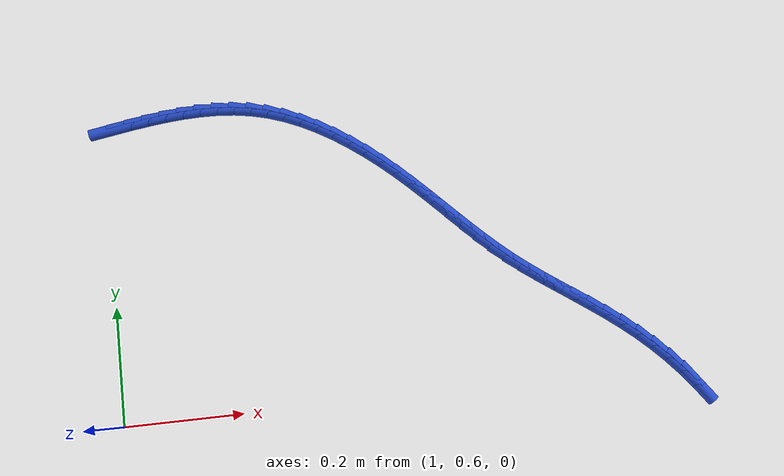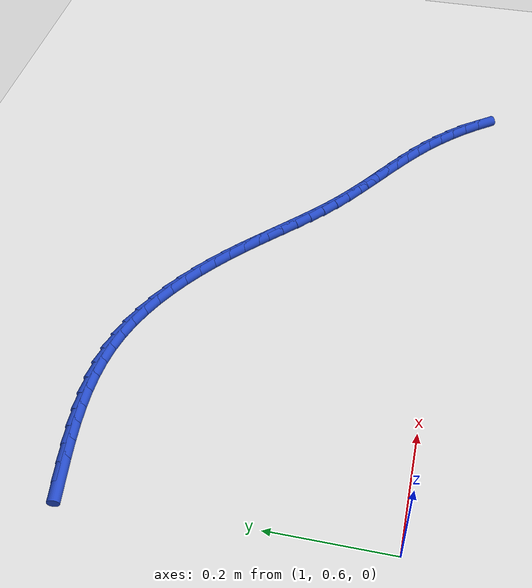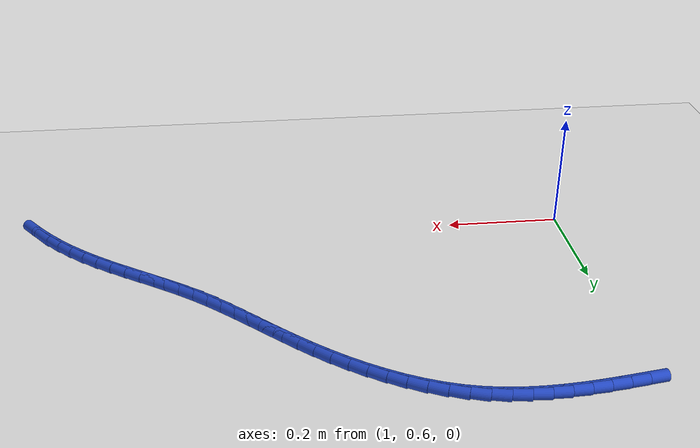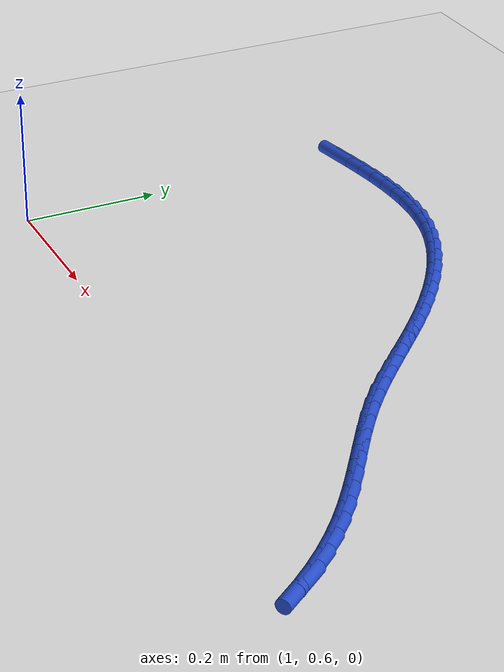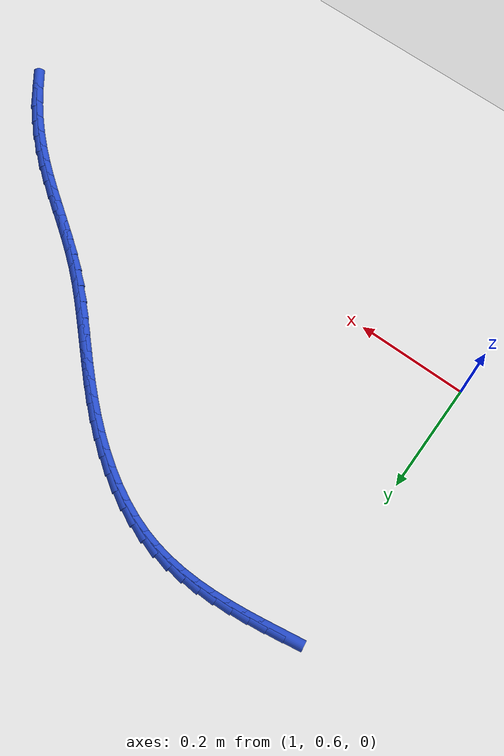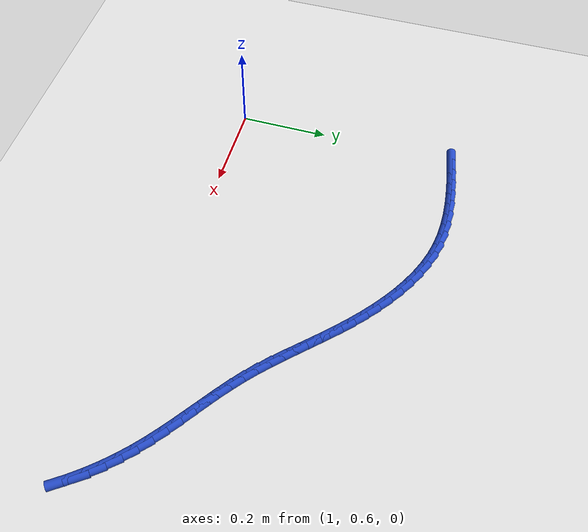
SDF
<sdf version="1.6">
 <world name="default">
  <model name="ground_plane">
   <static>1</static>
   <link name="link">
    <collision name="collision">
     <geometry><plane><normal>0 0 1</normal><size>100 100</size></plane></geometry>
     <surface><friction><ode><mu>100</mu><mu2>50</mu2></ode></friction></surface>
    </collision>
    <visual name="visual">
     <cast_shadows>0</cast_shadows>
     <geometry><plane><normal>0 0 1</normal><size>100 100</size></plane></geometry>
     <material>
      <script><uri>file://media/materials/scripts/gazebo.material</uri><name>Gazebo/WhiteGlow</name></script>
     </material>
    </visual>
   </link>
  </model>
  <model name="line">
   <link name="link_54">
    <pose>1.015760706870543 1.1087960179646674 0.01 0 1.57 0.15873326930780768</pose>
    <collision name="collision">
     <geometry><cylinder><radius>0.01</radius><length>0.08</length></cylinder></geometry>
    </collision>
    <visual name="visual">
     <material>
      <script><name>Gazebo/Blue</name><uri>file://media/materials/scripts/gazebo.material</uri></script>
     </material>
     <geometry><cylinder><radius>0.01</radius><length>0.08</length></cylinder></geometry>
    </visual>
   </link>
   <link name="link_55">
    <pose>1.0469477536287444 1.11378844056885 0.01 0 1.57 0.14049145370652116</pose>
    <collision name="collision">
     <geometry><cylinder><radius>0.01</radius><length>0.08</length></cylinder></geometry>
    </collision>
    <visual name="visual">
     <material>
      <script><name>Gazebo/Blue</name><uri>file://media/materials/scripts/gazebo.material</uri></script>
     </material>
     <geometry><cylinder><radius>0.01</radius><length>0.08</length></cylinder></geometry>
    </visual>
   </link>
   <link name="link_56">
    <pose>1.0779009028656812 1.1181659322267992 0.01 0 1.57 0.11358467103288736</pose>
    <collision name="collision">
     <geometry><cylinder><radius>0.01</radius><length>0.08</length></cylinder></geometry>
    </collision>
    <visual name="visual">
     <material>
      <script><name>Gazebo/Blue</name><uri>file://media/materials/scripts/gazebo.material</uri></script>
     </material>
     <geometry><cylinder><radius>0.01</radius><length>0.08</length></cylinder></geometry>
    </visual>
   </link>
   <link name="link_57">
    <pose>1.1085981624385484 1.1216677428358455 0.01 0 1.57 0.07760281318565207</pose>
    <collision name="collision">
     <geometry><cylinder><radius>0.01</radius><length>0.08</length></cylinder></geometry>
    </collision>
    <visual name="visual">
     <material>
      <script><name>Gazebo/Blue</name><uri>file://media/materials/scripts/gazebo.material</uri></script>
     </material>
     <geometry><cylinder><radius>0.01</radius><length>0.08</length></cylinder></geometry>
    </visual>
   </link>
   <link name="link_58">
    <pose>1.1390175402045393 1.1240331222933213 0.01 0 1.57 0.03213415901626179</pose>
    <collision name="collision">
     <geometry><cylinder><radius>0.01</radius><length>0.08</length></cylinder></geometry>
    </collision>
    <visual name="visual">
     <material>
      <script><name>Gazebo/Blue</name><uri>file://media/materials/scripts/gazebo.material</uri></script>
     </material>
     <geometry><cylinder><radius>0.01</radius><length>0.08</length></cylinder></geometry>
    </visual>
   </link>
   <link name="link_59">
    <pose>1.1691370440208488 1.1250013204965583 0.01 0 1.57 -0.023143110017349037</pose>
    <collision name="collision">
     <geometry><cylinder><radius>0.01</radius><length>0.08</length></cylinder></geometry>
    </collision>
    <visual name="visual">
     <material>
      <script><name>Gazebo/Blue</name><uri>file://media/materials/scripts/gazebo.material</uri></script>
     </material>
     <geometry><cylinder><radius>0.01</radius><length>0.08</length></cylinder></geometry>
    </visual>
   </link>
   <link name="link_60">
    <pose>1.1989346817446702 1.1243115873428884 0.01 0 1.57 -0.08832915422428958</pose>
    <collision name="collision">
     <geometry><cylinder><radius>0.01</radius><length>0.08</length></cylinder></geometry>
    </collision>
    <visual name="visual">
     <material>
      <script><name>Gazebo/Blue</name><uri>file://media/materials/scripts/gazebo.material</uri></script>
     </material>
     <geometry><cylinder><radius>0.01</radius><length>0.08</length></cylinder></geometry>
    </visual>
   </link>
   <link name="link_61">
    <pose>1.2283884612331992 1.1217031727296436 0.01 0 1.57 -0.16313629293200205</pose>
    <collision name="collision">
     <geometry><cylinder><radius>0.01</radius><length>0.08</length></cylinder></geometry>
    </collision>
    <visual name="visual">
     <material>
      <script><name>Gazebo/Blue</name><uri>file://media/materials/scripts/gazebo.material</uri></script>
     </material>
     <geometry><cylinder><radius>0.01</radius><length>0.08</length></cylinder></geometry>
    </visual>
   </link>
   <link name="link_62">
    <pose>1.257476390343629 1.1169153265541558 0.01 0 1.57 -0.24667478029076448</pose>
    <collision name="collision">
     <geometry><cylinder><radius>0.01</radius><length>0.08</length></cylinder></geometry>
    </collision>
    <visual name="visual">
     <material>
      <script><name>Gazebo/Blue</name><uri>file://media/materials/scripts/gazebo.material</uri></script>
     </material>
     <geometry><cylinder><radius>0.01</radius><length>0.08</length></cylinder></geometry>
    </visual>
   </link>
   <link name="link_63">
    <pose>1.2861763682849185 1.109688589145686 0.01 0 1.57 -0.3325190543589794</pose>
    <collision name="collision">
     <geometry><cylinder><radius>0.01</radius><length>0.08</length></cylinder></geometry>
    </collision>
    <visual name="visual">
     <material>
      <script><name>Gazebo/Blue</name><uri>file://media/materials/scripts/gazebo.material</uri></script>
     </material>
     <geometry><cylinder><radius>0.01</radius><length>0.08</length></cylinder></geometry>
    </visual>
   </link>
   <link name="link_64">
    <pose>1.3144528192418148 1.0999235457840157 0.01 0 1.57 -0.410332148560389</pose>
    <collision name="collision">
     <geometry><cylinder><radius>0.01</radius><length>0.08</length></cylinder></geometry>
    </collision>
    <visual name="visual">
     <material>
      <script><name>Gazebo/Blue</name><uri>file://media/materials/scripts/gazebo.material</uri></script>
     </material>
     <geometry><cylinder><radius>0.01</radius><length>0.08</length></cylinder></geometry>
    </visual>
   </link>
   <link name="link_65">
    <pose>1.3422438182778569 1.0878337343443036 0.01 0 1.57 -0.47951037030673416</pose>
    <collision name="collision">
     <geometry><cylinder><radius>0.01</radius><length>0.08</length></cylinder></geometry>
    </collision>
    <visual name="visual">
     <material>
      <script><name>Gazebo/Blue</name><uri>file://media/materials/scripts/gazebo.material</uri></script>
     </material>
     <geometry><cylinder><radius>0.01</radius><length>0.08</length></cylinder></geometry>
    </visual>
   </link>
   <link name="link_66">
    <pose>1.3694843880322782 1.0736689468181786 0.01 0 1.57 -0.5408301602242348</pose>
    <collision name="collision">
     <geometry><cylinder><radius>0.01</radius><length>0.08</length></cylinder></geometry>
    </collision>
    <visual name="visual">
     <material>
      <script><name>Gazebo/Blue</name><uri>file://media/materials/scripts/gazebo.material</uri></script>
     </material>
     <geometry><cylinder><radius>0.01</radius><length>0.08</length></cylinder></geometry>
    </visual>
   </link>
   <link name="link_67">
    <pose>1.3961095511443111 1.0576789751972704 0.01 0 1.57 -0.5951421493192169</pose>
    <collision name="collision">
     <geometry><cylinder><radius>0.01</radius><length>0.08</length></cylinder></geometry>
    </collision>
    <visual name="visual">
     <material>
      <script><name>Gazebo/Blue</name><uri>file://media/materials/scripts/gazebo.material</uri></script>
     </material>
     <geometry><cylinder><radius>0.01</radius><length>0.08</length></cylinder></geometry>
    </visual>
   </link>
   <link name="link_68">
    <pose>1.4220543302531885 1.040113611473207 0.01 0 1.57 -0.6432826686517489</pose>
    <collision name="collision">
     <geometry><cylinder><radius>0.01</radius><length>0.08</length></cylinder></geometry>
    </collision>
    <visual name="visual">
     <material>
      <script><name>Gazebo/Blue</name><uri>file://media/materials/scripts/gazebo.material</uri></script>
     </material>
     <geometry><cylinder><radius>0.01</radius><length>0.08</length></cylinder></geometry>
    </visual>
   </link>
   <link name="link_69">
    <pose>1.4472537479981422 1.0212226476376178 0.01 0 1.57 -0.6860259082498815</pose>
    <collision name="collision">
     <geometry><cylinder><radius>0.01</radius><length>0.08</length></cylinder></geometry>
    </collision>
    <visual name="visual">
     <material>
      <script><name>Gazebo/Blue</name><uri>file://media/materials/scripts/gazebo.material</uri></script>
     </material>
     <geometry><cylinder><radius>0.01</radius><length>0.08</length></cylinder></geometry>
    </visual>
   </link>
   <link name="link_70">
    <pose>1.4716428270184054 1.001255875682132 0.01 0 1.57 -0.7240472133193749</pose>
    <collision name="collision">
     <geometry><cylinder><radius>0.01</radius><length>0.08</length></cylinder></geometry>
    </collision>
    <visual name="visual">
     <material>
      <script><name>Gazebo/Blue</name><uri>file://media/materials/scripts/gazebo.material</uri></script>
     </material>
     <geometry><cylinder><radius>0.01</radius><length>0.08</length></cylinder></geometry>
    </visual>
   </link>
   <link name="link_71">
    <pose>1.4951575300693491 0.9804629061123997 0.01 0 1.57 -0.7563191431337096</pose>
    <collision name="collision">
     <geometry><cylinder><radius>0.01</radius><length>0.08</length></cylinder></geometry>
    </collision>
    <visual name="visual">
     <material>
      <script><name>Gazebo/Blue</name><uri>file://media/materials/scripts/gazebo.material</uri></script>
     </material>
     <geometry><cylinder><radius>0.01</radius><length>0.08</length></cylinder></geometry>
    </visual>
   </link>
   <link name="link_72">
    <pose>1.5178264443172 0.9590754686306682 0.01 0 1.57 -0.7799574278354349</pose>
    <collision name="collision">
     <geometry><cylinder><radius>0.01</radius><length>0.08</length></cylinder></geometry>
    </collision>
    <visual name="visual">
     <material>
      <script><name>Gazebo/Blue</name><uri>file://media/materials/scripts/gazebo.material</uri></script>
     </material>
     <geometry><cylinder><radius>0.01</radius><length>0.08</length></cylinder></geometry>
    </visual>
   </link>
   <link name="link_73">
    <pose>1.5398476736232185 0.9372925683618358 0.01 0 1.57 -0.7944196812804019</pose>
    <collision name="collision">
     <geometry><cylinder><radius>0.01</radius><length>0.08</length></cylinder></geometry>
    </collision>
    <visual name="visual">
     <material>
      <script><name>Gazebo/Blue</name><uri>file://media/materials/scripts/gazebo.material</uri></script>
     </material>
     <geometry><cylinder><radius>0.01</radius><length>0.08</length></cylinder></geometry>
    </visual>
   </link>
   <link name="link_74">
    <pose>1.5614374245231066 0.915309715775776 0.01 0 1.57 -0.7995298411521264</pose>
    <collision name="collision">
     <geometry><cylinder><radius>0.01</radius><length>0.08</length></cylinder></geometry>
    </collision>
    <visual name="visual">
     <material>
      <script><name>Gazebo/Blue</name><uri>file://media/materials/scripts/gazebo.material</uri></script>
     </material>
     <geometry><cylinder><radius>0.01</radius><length>0.08</length></cylinder></geometry>
    </visual>
   </link>
   <link name="link_75">
    <pose>1.582811903552567 0.8933224213423635 0.01 0 1.57 -0.7951452750269012</pose>
    <collision name="collision">
     <geometry><cylinder><radius>0.01</radius><length>0.08</length></cylinder></geometry>
    </collision>
    <visual name="visual">
     <material>
      <script><name>Gazebo/Blue</name><uri>file://media/materials/scripts/gazebo.material</uri></script>
     </material>
     <geometry><cylinder><radius>0.01</radius><length>0.08</length></cylinder></geometry>
    </visual>
   </link>
   <link name="link_76">
    <pose>1.6041873172473018 0.8715261955314718 0.01 0 1.57 -0.7811447282870082</pose>
    <collision name="collision">
     <geometry><cylinder><radius>0.01</radius><length>0.08</length></cylinder></geometry>
    </collision>
    <visual name="visual">
     <material>
      <script><name>Gazebo/Blue</name><uri>file://media/materials/scripts/gazebo.material</uri></script>
     </material>
     <geometry><cylinder><radius>0.01</radius><length>0.08</length></cylinder></geometry>
    </visual>
   </link>
   <link name="link_77">
    <pose>1.6257798721430123 0.8501165488129753 0.01 0 1.57 -0.757441651362786</pose>
    <collision name="collision">
     <geometry><cylinder><radius>0.01</radius><length>0.08</length></cylinder></geometry>
    </collision>
    <visual name="visual">
     <material>
      <script><name>Gazebo/Blue</name><uri>file://media/materials/scripts/gazebo.material</uri></script>
     </material>
     <geometry><cylinder><radius>0.01</radius><length>0.08</length></cylinder></geometry>
    </visual>
   </link>
   <link name="link_78">
    <pose>1.6478057747754016 0.8292889916567473 0.01 0 1.57 -0.7240247974301102</pose>
    <collision name="collision">
     <geometry><cylinder><radius>0.01</radius><length>0.08</length></cylinder></geometry>
    </collision>
    <visual name="visual">
     <material>
      <script><name>Gazebo/Blue</name><uri>file://media/materials/scripts/gazebo.material</uri></script>
     </material>
     <geometry><cylinder><radius>0.01</radius><length>0.08</length></cylinder></geometry>
    </visual>
   </link>
   <link name="link_79">
    <pose>1.6704812316801707 0.8092390345326625 0.01 0 1.57 -0.68355450266241</pose>
    <collision name="collision">
     <geometry><cylinder><radius>0.01</radius><length>0.08</length></cylinder></geometry>
    </collision>
    <visual name="visual">
     <material>
      <script><name>Gazebo/Blue</name><uri>file://media/materials/scripts/gazebo.material</uri></script>
     </material>
     <geometry><cylinder><radius>0.01</radius><length>0.08</length></cylinder></geometry>
    </visual>
   </link>
   <link name="link_80">
    <pose>1.6939710301180264 0.7901052487481375 0.01 0 1.57 -0.6503827891560151</pose>
    <collision name="collision">
     <geometry><cylinder><radius>0.01</radius><length>0.08</length></cylinder></geometry>
    </collision>
    <visual name="visual">
     <material>
      <script><name>Gazebo/Blue</name><uri>file://media/materials/scripts/gazebo.material</uri></script>
     </material>
     <geometry><cylinder><radius>0.01</radius><length>0.08</length></cylinder></geometry>
    </visual>
   </link>
   <link name="link_81">
    <pose>1.7181524407855462 0.7717078239851192 0.01 0 1.57 -0.6294303980749338</pose>
    <collision name="collision">
     <geometry><cylinder><radius>0.01</radius><length>0.08</length></cylinder></geometry>
    </collision>
    <visual name="visual">
     <material>
      <script><name>Gazebo/Blue</name><uri>file://media/materials/scripts/gazebo.material</uri></script>
     </material>
     <geometry><cylinder><radius>0.01</radius><length>0.08</length></cylinder></geometry>
    </visual>
   </link>
   <link name="link_82">
    <pose>1.7428028504940996 0.7537563434503135 0.01 0 1.57 -0.6205874263605401</pose>
    <collision name="collision">
     <geometry><cylinder><radius>0.01</radius><length>0.08</length></cylinder></geometry>
    </collision>
    <visual name="visual">
     <material>
      <script><name>Gazebo/Blue</name><uri>file://media/materials/scripts/gazebo.material</uri></script>
     </material>
     <geometry><cylinder><radius>0.01</radius><length>0.08</length></cylinder></geometry>
    </visual>
   </link>
   <link name="link_83">
    <pose>1.7676995463532719 0.7359602799456021 0.01 0 1.57 -0.6237211794033409</pose>
    <collision name="collision">
     <geometry><cylinder><radius>0.01</radius><length>0.08</length></cylinder></geometry>
    </collision>
    <visual name="visual">
     <material>
      <script><name>Gazebo/Blue</name><uri>file://media/materials/scripts/gazebo.material</uri></script>
     </material>
     <geometry><cylinder><radius>0.01</radius><length>0.08</length></cylinder></geometry>
    </visual>
   </link>
   <link name="link_84">
    <pose>1.7926198154726485 0.7180291062728673 0.01 0 1.57 -0.6387195886361632</pose>
    <collision name="collision">
     <geometry><cylinder><radius>0.01</radius><length>0.08</length></cylinder></geometry>
    </collision>
    <visual name="visual">
     <material>
      <script><name>Gazebo/Blue</name><uri>file://media/materials/scripts/gazebo.material</uri></script>
     </material>
     <geometry><cylinder><radius>0.01</radius><length>0.08</length></cylinder></geometry>
    </visual>
   </link>
   <link name="link_85">
    <pose>1.8173409449618152 0.6996722952339908 0.01 0 1.57 -0.6654776158849866</pose>
    <collision name="collision">
     <geometry><cylinder><radius>0.01</radius><length>0.08</length></cylinder></geometry>
    </collision>
    <visual name="visual">
     <material>
      <script><name>Gazebo/Blue</name><uri>file://media/materials/scripts/gazebo.material</uri></script>
     </material>
     <geometry><cylinder><radius>0.01</radius><length>0.08</length></cylinder></geometry>
    </visual>
   </link>
   <link name="link_86">
    <pose>1.8416402219303583 0.680599319630855 0.01 0 1.57 -0.7038350305043006</pose>
    <collision name="collision">
     <geometry><cylinder><radius>0.01</radius><length>0.08</length></cylinder></geometry>
    </collision>
    <visual name="visual">
     <material>
      <script><name>Gazebo/Blue</name><uri>file://media/materials/scripts/gazebo.material</uri></script>
     </material>
     <geometry><cylinder><radius>0.01</radius><length>0.08</length></cylinder></geometry>
    </visual>
   </link>
   <link name="link_87">
    <pose>1.8652949334878641 0.6605196522653415 0.01 0 1.57 -0.7521983126951046</pose>
    <collision name="collision">
     <geometry><cylinder><radius>0.01</radius><length>0.08</length></cylinder></geometry>
    </collision>
    <visual name="visual">
     <material>
      <script><name>Gazebo/Blue</name><uri>file://media/materials/scripts/gazebo.material</uri></script>
     </material>
     <geometry><cylinder><radius>0.01</radius><length>0.08</length></cylinder></geometry>
    </visual>
   </link>
   <link name="link_88">
    <pose>1.888093961344719 0.6391863497497637 0.01 0 1.57 -0.8028975816352523</pose>
    <collision name="collision">
     <geometry><cylinder><radius>0.01</radius><length>0.08</length></cylinder></geometry>
    </collision>
    <visual name="visual">
     <material>
      <script><name>Gazebo/Blue</name><uri>file://media/materials/scripts/gazebo.material</uri></script>
     </material>
     <geometry><cylinder><radius>0.01</radius><length>0.08</length></cylinder></geometry>
    </visual>
   </link>
   <link name="link_89">
    <pose>1.9098944775627098 0.6166091703958206 0.01 0 1.57 -0.8536124538079913</pose>
    <collision name="collision">
     <geometry><cylinder><radius>0.01</radius><length>0.08</length></cylinder></geometry>
    </collision>
    <visual name="visual">
     <material>
      <script><name>Gazebo/Blue</name><uri>file://media/materials/scripts/gazebo.material</uri></script>
     </material>
     <geometry><cylinder><radius>0.01</radius><length>0.08</length></cylinder></geometry>
    </visual>
   </link>
   <link name="link_90">
    <pose>1.9305785718054225 0.5928915371485862 0.01 0 1.57 -0.904831766494083</pose>
    <collision name="collision">
     <geometry><cylinder><radius>0.01</radius><length>0.08</length></cylinder></geometry>
    </collision>
    <visual name="visual">
     <material>
      <script><name>Gazebo/Blue</name><uri>file://media/materials/scripts/gazebo.material</uri></script>
     </material>
     <geometry><cylinder><radius>0.01</radius><length>0.08</length></cylinder></geometry>
    </visual>
   </link>
   <link name="link_91">
    <pose>1.950028370188254 0.568137009974565 0.01 0 1.57 -0.9570428079046952</pose>
    <collision name="collision">
     <geometry><cylinder><radius>0.01</radius><length>0.08</length></cylinder></geometry>
    </collision>
    <visual name="visual">
     <material>
      <script><name>Gazebo/Blue</name><uri>file://media/materials/scripts/gazebo.material</uri></script>
     </material>
     <geometry><cylinder><radius>0.01</radius><length>0.08</length></cylinder></geometry>
    </visual>
   </link>
  </model>
 </world>
</sdf>
